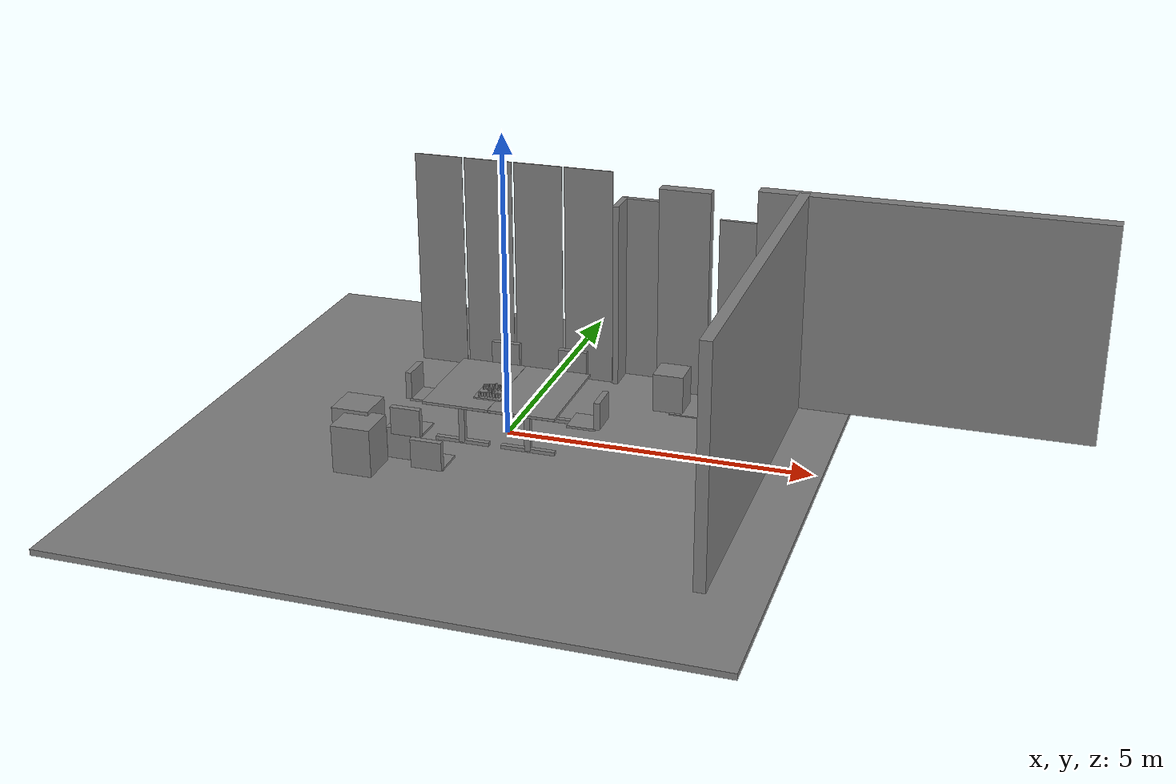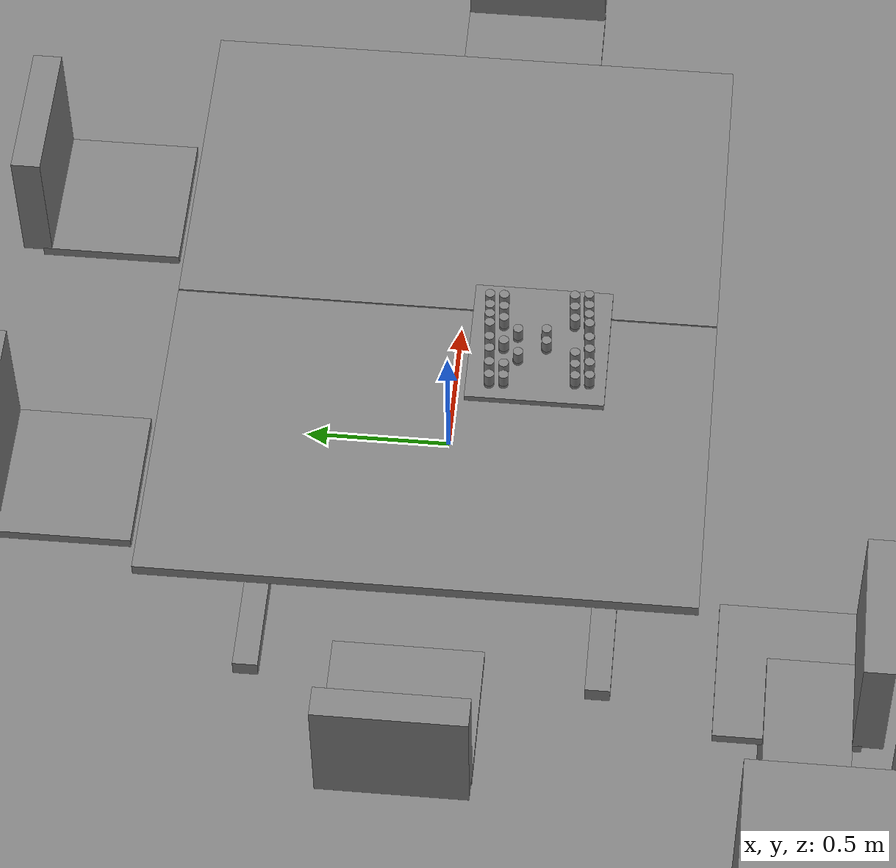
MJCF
<mujoco>
  <worldbody>
    <body pos="-0.03584015 -0.1478937 0.8536305" quat="-1 0 0 0" gravcomp="0" name="Chess_Black_knight_07_MuJoCo_body_0">
      <freejoint name="Chess_Black_knight_07_free_joint_1" />
      <geom mass="0.027" type="cylinder" size="0.01669136 0.006" pos="0 0 -0.02708054" quat="-1 0 0 0" priority="0" contype="1" conaffinity="1" group="0" condim="4" solmix="1" solref="0.01 1" solimp="0.9 0.95 0.001" margin="0.0001" gap="0" friction="0.65 0.003 0.0001" fluidshape="none" fluidcoef="5 0.25 1.5 1 1" name="Chess_Black_knight_07_base_contact_2" />
      <geom mass="0.008" type="cylinder" size="0.01669136 0.02708052" pos="0 0 0.005999982" quat="-1 0 0 0" priority="0" contype="1" conaffinity="1" group="0" condim="4" solmix="1" solref="0.01 1" solimp="0.9 0.95 0.001" margin="0.0001" gap="0" friction="0.65 0.003 0.0001" fluidshape="none" fluidcoef="5 0.25 1.5 1 1" name="Chess_Black_knight_07_upper_contact_3" />
    </body>
    <body pos="-0.2152627 -0.2552574 0.84905" quat="-1 0 0 0" gravcomp="0" name="Chess_Black_pawn_03_MuJoCo_body_4">
      <freejoint name="Chess_Black_pawn_03_free_joint_5" />
      <geom mass="0.027" type="cylinder" size="0.01645362 0.006" pos="0 0 -0.02250004" quat="-1 0 0 0" priority="0" contype="1" conaffinity="1" group="0" condim="4" solmix="1" solref="0.01 1" solimp="0.9 0.95 0.001" margin="0.0001" gap="0" friction="0.65 0.003 0.0001" fluidshape="none" fluidcoef="5 0.25 1.5 1 1" name="Chess_Black_pawn_03_base_contact_6" />
      <geom mass="0.008" type="cylinder" size="0.01645362 0.02250002" pos="0 0 0.005999982" quat="-1 0 0 0" priority="0" contype="1" conaffinity="1" group="0" condim="4" solmix="1" solref="0.01 1" solimp="0.9 0.95 0.001" margin="0.0001" gap="0" friction="0.65 0.003 0.0001" fluidshape="none" fluidcoef="5 0.25 1.5 1 1" name="Chess_Black_pawn_03_upper_contact_7" />
    </body>
    <geom density="0" type="box" size="0.2465 0.237 0.01800001" pos="-0.5599999 1.208 0.464" quat="-1 0 0 0" priority="0" contype="1" conaffinity="1" group="0" condim="4" solmix="1" solref="0.01 1" solimp="0.9 0.95 0.001" margin="0.0001" gap="0" friction="0.65 0.003 0.0001" fluidshape="none" fluidcoef="5 0.25 1.5 1 1" name="chair_02_Far left chair | slim upholstered seat_contact_8" />
    <body pos="-0.1219259 -0.248244 0.84905" quat="-1 0 0 0" gravcomp="0" name="Chess_Black_pawn_05_MuJoCo_body_9">
      <freejoint name="Chess_Black_pawn_05_free_joint_10" />
      <geom mass="0.027" type="cylinder" size="0.01645362 0.006" pos="0 0 -0.02250004" quat="-1 0 0 0" priority="0" contype="1" conaffinity="1" group="0" condim="4" solmix="1" solref="0.01 1" solimp="0.9 0.95 0.001" margin="0.0001" gap="0" friction="0.65 0.003 0.0001" fluidshape="none" fluidcoef="5 0.25 1.5 1 1" name="Chess_Black_pawn_05_base_contact_11" />
      <geom mass="0.008" type="cylinder" size="0.01645362 0.02250002" pos="0 0 0.005999982" quat="-1 0 0 0" priority="0" contype="1" conaffinity="1" group="0" condim="4" solmix="1" solref="0.01 1" solimp="0.9 0.95 0.001" margin="0.0001" gap="0" friction="0.65 0.003 0.0001" fluidshape="none" fluidcoef="5 0.25 1.5 1 1" name="Chess_Black_pawn_05_upper_contact_12" />
    </body>
    <geom density="0" type="box" size="0.425 0.007999934 1.89" pos="-2.075 2.4 1.9" quat="-1 0 0 0" priority="0" contype="1" conaffinity="1" group="0" condim="4" solmix="1" solref="0.01 1" solimp="0.9 0.95 0.001" margin="0.0001" gap="0" friction="0.65 0.003 0.0001" fluidshape="none" fluidcoef="5 0.25 1.5 1 1" name="window_0_contact_13" />
    <body pos="-0.1510608 -0.4850929 0.86005" quat="-1 0 0 0" gravcomp="0" name="Chess_White_queen_04_MuJoCo_body_14">
      <freejoint name="Chess_White_queen_04_free_joint_15" />
      <geom mass="0.027" type="cylinder" size="0.01645362 0.006" pos="0 0 -0.03349996" quat="-1 0 0 0" priority="0" contype="1" conaffinity="1" group="0" condim="4" solmix="1" solref="0.01 1" solimp="0.9 0.95 0.001" margin="0.0001" gap="0" friction="0.65 0.003 0.0001" fluidshape="none" fluidcoef="5 0.25 1.5 1 1" name="Chess_White_queen_04_base_contact_16" />
      <geom mass="0.008" type="cylinder" size="0.01645362 0.03349997" pos="0 0 0.006000042" quat="-1 0 0 0" priority="0" contype="1" conaffinity="1" group="0" condim="4" solmix="1" solref="0.01 1" solimp="0.9 0.95 0.001" margin="0.0001" gap="0" friction="0.65 0.003 0.0001" fluidshape="none" fluidcoef="5 0.25 1.5 1 1" name="Chess_White_queen_04_upper_contact_17" />
    </body>
    <geom density="0" type="box" size="0.245 0.04928007 0.2271683" pos="-1.13 -1.464 0.701" quat="-1 0 0 0" priority="0" contype="1" conaffinity="1" group="0" condim="4" solmix="1" solref="0.01 1" solimp="0.9 0.95 0.001" margin="0.0001" gap="0" friction="0.65 0.003 0.0001" fluidshape="none" fluidcoef="5 0.25 1.5 1 1" name="chair_05_Empty near desk chair | upholstered back_contact_18" />
    <geom density="0" type="box" size="0.04999997 0.2750001 1.6" pos="1.08 2.64 1.6" quat="-1 0 0 0" priority="0" contype="1" conaffinity="1" group="0" condim="4" solmix="1" solref="0.01 1" solimp="0.9 0.95 0.001" margin="0.0001" gap="0" friction="0.65 0.003 0.0001" fluidshape="none" fluidcoef="5 0.25 1.5 1 1" name="recess_left_contact_19" />
    <geom density="0" type="box" size="0.355 0.03 1.52" pos="3.13 2.71 1.52" quat="-1 0 0 0" priority="0" contype="1" conaffinity="1" group="0" condim="4" solmix="1" solref="0.01 1" solimp="0.9 0.95 0.001" margin="0.0001" gap="0" friction="0.65 0.003 0.0001" fluidshape="none" fluidcoef="5 0.25 1.5 1 1" name="walnut_door_contact_20" />
    <body pos="-0.01081772 -0.4745727 0.8536305" quat="-1 0 0 0" gravcomp="0" name="Chess_White_knight_07_MuJoCo_body_21">
      <freejoint name="Chess_White_knight_07_free_joint_22" />
      <geom mass="0.027" type="cylinder" size="0.01669137 0.006" pos="0 0 -0.02708054" quat="-1 0 0 0" priority="0" contype="1" conaffinity="1" group="0" condim="4" solmix="1" solref="0.01 1" solimp="0.9 0.95 0.001" margin="0.0001" gap="0" friction="0.65 0.003 0.0001" fluidshape="none" fluidcoef="5 0.25 1.5 1 1" name="Chess_White_knight_07_base_contact_23" />
      <geom mass="0.008" type="cylinder" size="0.01669137 0.02708052" pos="0 0 0.005999982" quat="-1 0 0 0" priority="0" contype="1" conaffinity="1" group="0" condim="4" solmix="1" solref="0.01 1" solimp="0.9 0.95 0.001" margin="0.0001" gap="0" friction="0.65 0.003 0.0001" fluidshape="none" fluidcoef="5 0.25 1.5 1 1" name="Chess_White_knight_07_upper_contact_24" />
    </body>
    <geom density="0" type="box" size="0.09000044 3.2 1.85" pos="4.2 -0.7000004 1.85" quat="-1 0 0 0" priority="0" contype="1" conaffinity="1" group="0" condim="4" solmix="1" solref="0.01 1" solimp="0.9 0.95 0.001" margin="0.0001" gap="0" friction="0.65 0.003 0.0001" fluidshape="none" fluidcoef="5 0.25 1.5 1 1" name="right_side_wall_contact_25" />
    <geom density="0" type="box" size="0.258 0.258 0.328" pos="2.26 1.74 0.342" quat="-1 0 0 0" priority="0" contype="1" conaffinity="1" group="0" condim="4" solmix="1" solref="0.01 1" solimp="0.9 0.95 0.001" margin="0.0001" gap="0" friction="0.65 0.003 0.0001" fluidshape="none" fluidcoef="5 0.25 1.5 1 1" name="plant_planter_01_contact_26" />
    <geom density="0" type="box" size="0.425 0.007999934 1.89" pos="-1.185 2.4 1.9" quat="-1 0 0 0" priority="0" contype="1" conaffinity="1" group="0" condim="4" solmix="1" solref="0.01 1" solimp="0.9 0.95 0.001" margin="0.0001" gap="0" friction="0.65 0.003 0.0001" fluidshape="none" fluidcoef="5 0.25 1.5 1 1" name="window_1_contact_27" />
    <body pos="0.03210627 -0.4243976 0.84905" quat="-1 0 0 0" gravcomp="0" name="Chess_White_pawn_08_MuJoCo_body_28">
      <freejoint name="Chess_White_pawn_08_free_joint_29" />
      <geom mass="0.027" type="cylinder" size="0.01645362 0.006" pos="0 0 -0.02250004" quat="-1 0 0 0" priority="0" contype="1" conaffinity="1" group="0" condim="4" solmix="1" solref="0.01 1" solimp="0.9 0.95 0.001" margin="0.0001" gap="0" friction="0.65 0.003 0.0001" fluidshape="none" fluidcoef="5 0.25 1.5 1 1" name="Chess_White_pawn_08_base_contact_30" />
      <geom mass="0.008" type="cylinder" size="0.01645362 0.02250002" pos="0 0 0.005999982" quat="-1 0 0 0" priority="0" contype="1" conaffinity="1" group="0" condim="4" solmix="1" solref="0.01 1" solimp="0.9 0.95 0.001" margin="0.0001" gap="0" friction="0.65 0.003 0.0001" fluidshape="none" fluidcoef="5 0.25 1.5 1 1" name="Chess_White_pawn_08_upper_contact_31" />
    </body>
    <geom density="0" type="box" size="0.45 0.04250006 0.03" pos="-0.5529999 0.59 0.051" quat="-1 0 0 0" priority="0" contype="1" conaffinity="1" group="0" condim="4" solmix="1" solref="0.01 1" solimp="0.9 0.95 0.001" margin="0.0001" gap="0" friction="0.65 0.003 0.0001" fluidshape="none" fluidcoef="5 0.25 1.5 1 1" name="desk_1_Desk 1 leg 1 floor runner_contact_32" />
    <geom density="0" type="box" size="5.144251 5.26675 0.05" pos="0 -0.3675003 -0.049" quat="-1 0 0 0" priority="0" contype="1" conaffinity="1" group="0" condim="4" solmix="1" solref="0.01 1" solimp="0.9 0.95 0.001" margin="0.0001" gap="0" friction="0.65 0.003 0.0001" fluidshape="none" fluidcoef="5 0.25 1.5 1 1" name="Floor_parquet_contact_surface_33" />
    <body pos="-0.1289393 -0.1549071 0.8663" quat="-1 0 0 0" gravcomp="0" name="Chess_Black_king_05_MuJoCo_body_34">
      <freejoint name="Chess_Black_king_05_free_joint_35" />
      <geom mass="0.027" type="cylinder" size="0.01645361 0.006" pos="0 0 -0.03975004" quat="-1 0 0 0" priority="0" contype="1" conaffinity="1" group="0" condim="4" solmix="1" solref="0.01 1" solimp="0.9 0.95 0.001" margin="0.0001" gap="0" friction="0.65 0.003 0.0001" fluidshape="none" fluidcoef="5 0.25 1.5 1 1" name="Chess_Black_king_05_base_contact_36" />
      <geom mass="0.008" type="cylinder" size="0.01645361 0.03975002" pos="0 0 0.005999982" quat="-1 0 0 0" priority="0" contype="1" conaffinity="1" group="0" condim="4" solmix="1" solref="0.01 1" solimp="0.9 0.95 0.001" margin="0.0001" gap="0" friction="0.65 0.003 0.0001" fluidshape="none" fluidcoef="5 0.25 1.5 1 1" name="Chess_Black_king_05_upper_contact_37" />
    </body>
    <body pos="-0.3121063 -0.2156024 0.84905" quat="-1 0 0 0" gravcomp="0" name="Chess_Black_pawn_01_MuJoCo_body_38">
      <freejoint name="Chess_Black_pawn_01_free_joint_39" />
      <geom mass="0.027" type="cylinder" size="0.01645362 0.006" pos="0 0 -0.02250004" quat="-1 0 0 0" priority="0" contype="1" conaffinity="1" group="0" condim="4" solmix="1" solref="0.01 1" solimp="0.9 0.95 0.001" margin="0.0001" gap="0" friction="0.65 0.003 0.0001" fluidshape="none" fluidcoef="5 0.25 1.5 1 1" name="Chess_Black_pawn_01_base_contact_40" />
      <geom mass="0.008" type="cylinder" size="0.01645362 0.02250002" pos="0 0 0.005999982" quat="-1 0 0 0" priority="0" contype="1" conaffinity="1" group="0" condim="4" solmix="1" solref="0.01 1" solimp="0.9 0.95 0.001" margin="0.0001" gap="0" friction="0.65 0.003 0.0001" fluidshape="none" fluidcoef="5 0.25 1.5 1 1" name="Chess_Black_pawn_01_upper_contact_41" />
    </body>
    <body pos="-0.06123061 -0.431411 0.84905" quat="-1 0 0 0" gravcomp="0" name="Chess_White_pawn_06_MuJoCo_body_42">
      <freejoint name="Chess_White_pawn_06_free_joint_43" />
      <geom mass="0.027" type="cylinder" size="0.01645362 0.006" pos="0 0 -0.02250004" quat="-1 0 0 0" priority="0" contype="1" conaffinity="1" group="0" condim="4" solmix="1" solref="0.01 1" solimp="0.9 0.95 0.001" margin="0.0001" gap="0" friction="0.65 0.003 0.0001" fluidshape="none" fluidcoef="5 0.25 1.5 1 1" name="Chess_White_pawn_06_base_contact_44" />
      <geom mass="0.008" type="cylinder" size="0.01645362 0.02250002" pos="0 0 0.005999982" quat="-1 0 0 0" priority="0" contype="1" conaffinity="1" group="0" condim="4" solmix="1" solref="0.01 1" solimp="0.9 0.95 0.001" margin="0.0001" gap="0" friction="0.65 0.003 0.0001" fluidshape="none" fluidcoef="5 0.25 1.5 1 1" name="Chess_White_pawn_06_upper_contact_45" />
    </body>
    <geom density="0" type="box" size="0.245 0.04927995 0.2271683" pos="-0.3800001 -2.424 0.701" quat="-1 0 0 0" priority="0" contype="1" conaffinity="1" group="0" condim="4" solmix="1" solref="0.01 1" solimp="0.9 0.95 0.001" margin="0.0001" gap="0" friction="0.65 0.003 0.0001" fluidshape="none" fluidcoef="5 0.25 1.5 1 1" name="chair_06_Nearest chair with jacket | upholstered back_contact_46" />
    <geom density="0" type="box" size="0.2465 0.237 0.01800001" pos="-1.13 -1.208 0.464" quat="-1 0 0 0" priority="0" contype="1" conaffinity="1" group="0" condim="4" solmix="1" solref="0.01 1" solimp="0.9 0.95 0.001" margin="0.0001" gap="0" friction="0.65 0.003 0.0001" fluidshape="none" fluidcoef="5 0.25 1.5 1 1" name="chair_05_Empty near desk chair | slim upholstered seat_contact_47" />
    <geom density="0" type="box" size="0.5505 0.9 0.02100003" pos="-0.553 4.834479E-08 0.774" quat="-1 0 0 0" priority="0" contype="1" conaffinity="1" group="0" condim="4" solmix="1" solref="0.01 1" solimp="0.9 0.95 0.001" margin="0.0001" gap="0" friction="0.65 0.003 0.0001" fluidshape="none" fluidcoef="5 0.25 1.5 1 1" name="desk_1_tabletop_48" />
    <geom density="0" type="box" size="0.04928007 0.245 0.2271683" pos="1.634 -0.1800002 0.701" quat="-1 0 0 0" priority="0" contype="1" conaffinity="1" group="0" condim="4" solmix="1" solref="0.01 1" solimp="0.9 0.95 0.001" margin="0.0001" gap="0" friction="0.65 0.003 0.0001" fluidshape="none" fluidcoef="5 0.25 1.5 1 1" name="chair_04_East occupied position | upholstered back_contact_49" />
    <geom density="0" type="box" size="0.1961133 0.1404344 0.2608607" pos="-1.3 -1.272016 0.2673036" quat="-1 0 0 0" priority="0" contype="1" conaffinity="1" group="0" condim="4" solmix="1" solref="0.01 1" solimp="0.9 0.95 0.001" margin="0.0001" gap="0" friction="0.65 0.003 0.0001" fluidshape="none" fluidcoef="5 0.25 1.5 1 1" name="shopping_tote_01_contact_50" />
    <body pos="0.01457274 -0.1910554 0.84905" quat="-1 0 0 0" gravcomp="0" name="Chess_Black_pawn_08_MuJoCo_body_51">
      <freejoint name="Chess_Black_pawn_08_free_joint_52" />
      <geom mass="0.027" type="cylinder" size="0.01645362 0.006" pos="0 0 -0.02250004" quat="-1 0 0 0" priority="0" contype="1" conaffinity="1" group="0" condim="4" solmix="1" solref="0.01 1" solimp="0.9 0.95 0.001" margin="0.0001" gap="0" friction="0.65 0.003 0.0001" fluidshape="none" fluidcoef="5 0.25 1.5 1 1" name="Chess_Black_pawn_08_base_contact_53" />
      <geom mass="0.008" type="cylinder" size="0.01645362 0.02250002" pos="0 0 0.005999982" quat="-1 0 0 0" priority="0" contype="1" conaffinity="1" group="0" condim="4" solmix="1" solref="0.01 1" solimp="0.9 0.95 0.001" margin="0.0001" gap="0" friction="0.65 0.003 0.0001" fluidshape="none" fluidcoef="5 0.25 1.5 1 1" name="Chess_Black_pawn_08_upper_contact_54" />
    </body>
    <geom density="0" type="box" size="0.0999999 0.07500005 0.1969205" pos="2.82 2.3 0.4419205" quat="-1 0 0 0" priority="0" contype="1" conaffinity="1" group="0" condim="4" solmix="1" solref="0.01 1" solimp="0.9 0.95 0.001" margin="0.0001" gap="0" friction="0.65 0.003 0.0001" fluidshape="none" fluidcoef="5 0.25 1.5 1 1" name="alcove_black_bag_contact_55" />
    <body pos="-0.2441599 -0.4921063 0.8536305" quat="-1 0 0 0" gravcomp="0" name="Chess_White_knight_02_MuJoCo_body_56">
      <freejoint name="Chess_White_knight_02_free_joint_57" />
      <geom mass="0.027" type="cylinder" size="0.01669137 0.006" pos="0 0 -0.02708054" quat="-1 0 0 0" priority="0" contype="1" conaffinity="1" group="0" condim="4" solmix="1" solref="0.01 1" solimp="0.9 0.95 0.001" margin="0.0001" gap="0" friction="0.65 0.003 0.0001" fluidshape="none" fluidcoef="5 0.25 1.5 1 1" name="Chess_White_knight_02_base_contact_58" />
      <geom mass="0.008" type="cylinder" size="0.01669137 0.02708052" pos="0 0 0.005999982" quat="-1 0 0 0" priority="0" contype="1" conaffinity="1" group="0" condim="4" solmix="1" solref="0.01 1" solimp="0.9 0.95 0.001" margin="0.0001" gap="0" friction="0.65 0.003 0.0001" fluidshape="none" fluidcoef="5 0.25 1.5 1 1" name="Chess_White_knight_02_upper_contact_59" />
    </body>
    <geom density="0" type="box" size="0.2465 0.237 0.01800001" pos="0.6200001 1.208 0.464" quat="-1 0 0 0" priority="0" contype="1" conaffinity="1" group="0" condim="4" solmix="1" solref="0.01 1" solimp="0.9 0.95 0.001" margin="0.0001" gap="0" friction="0.65 0.003 0.0001" fluidshape="none" fluidcoef="5 0.25 1.5 1 1" name="chair_03_Far right chair | slim upholstered seat_contact_60" />
    <geom density="0" type="box" size="0.04900003 0.04600001 0.3185" pos="0.5529999 -0.59 0.361" quat="-1 0 0 0" priority="0" contype="1" conaffinity="1" group="0" condim="4" solmix="1" solref="0.01 1" solimp="0.9 0.95 0.001" margin="0.0001" gap="0" friction="0.65 0.003 0.0001" fluidshape="none" fluidcoef="5 0.25 1.5 1 1" name="desk_2_Desk 2 leg 0 outer column_contact_61" />
    <body pos="0.03561297 -0.4710661 0.8510501" quat="-1 0 0 0" gravcomp="0" name="Chess_White_rook_08_MuJoCo_body_62">
      <freejoint name="Chess_White_rook_08_free_joint_63" />
      <geom mass="0.027" type="cylinder" size="0.01645364 0.006" pos="0 0 -0.02450007" quat="-1 0 0 0" priority="0" contype="1" conaffinity="1" group="0" condim="4" solmix="1" solref="0.01 1" solimp="0.9 0.95 0.001" margin="0.0001" gap="0" friction="0.65 0.003 0.0001" fluidshape="none" fluidcoef="5 0.25 1.5 1 1" name="Chess_White_rook_08_base_contact_64" />
      <geom mass="0.008" type="cylinder" size="0.01645364 0.02450005" pos="0 0 0.005999982" quat="-1 0 0 0" priority="0" contype="1" conaffinity="1" group="0" condim="4" solmix="1" solref="0.01 1" solimp="0.9 0.95 0.001" margin="0.0001" gap="0" friction="0.65 0.003 0.0001" fluidshape="none" fluidcoef="5 0.25 1.5 1 1" name="Chess_White_rook_08_upper_contact_65" />
    </body>
    <geom density="0" type="box" size="0.04900003 0.04600001 0.3185" pos="-0.553 -0.5899999 0.361" quat="-1 0 0 0" priority="0" contype="1" conaffinity="1" group="0" condim="4" solmix="1" solref="0.01 1" solimp="0.9 0.95 0.001" margin="0.0001" gap="0" friction="0.65 0.003 0.0001" fluidshape="none" fluidcoef="5 0.25 1.5 1 1" name="desk_1_Desk 1 leg 0 outer column_contact_66" />
    <body pos="-0.2222762 -0.1619205 0.8596501" quat="-1 0 0 0" gravcomp="0" name="Chess_Black_bishop_03_MuJoCo_body_67">
      <freejoint name="Chess_Black_bishop_03_free_joint_68" />
      <geom mass="0.027" type="cylinder" size="0.01645361 0.006" pos="0 0 -0.03310007" quat="-1 0 0 0" priority="0" contype="1" conaffinity="1" group="0" condim="4" solmix="1" solref="0.01 1" solimp="0.9 0.95 0.001" margin="0.0001" gap="0" friction="0.65 0.003 0.0001" fluidshape="none" fluidcoef="5 0.25 1.5 1 1" name="Chess_Black_bishop_03_base_contact_69" />
      <geom mass="0.008" type="cylinder" size="0.01645361 0.03310005" pos="0 0 0.005999982" quat="-1 0 0 0" priority="0" contype="1" conaffinity="1" group="0" condim="4" solmix="1" solref="0.01 1" solimp="0.9 0.95 0.001" margin="0.0001" gap="0" friction="0.65 0.003 0.0001" fluidshape="none" fluidcoef="5 0.25 1.5 1 1" name="Chess_Black_bishop_03_upper_contact_70" />
    </body>
    <body pos="-0.2691823 -0.1654272 0.8536305" quat="-1 0 0 0" gravcomp="0" name="Chess_Black_knight_02_MuJoCo_body_71">
      <freejoint name="Chess_Black_knight_02_free_joint_72" />
      <geom mass="0.027" type="cylinder" size="0.01669137 0.006" pos="0 0 -0.02708054" quat="-1 0 0 0" priority="0" contype="1" conaffinity="1" group="0" condim="4" solmix="1" solref="0.01 1" solimp="0.9 0.95 0.001" margin="0.0001" gap="0" friction="0.65 0.003 0.0001" fluidshape="none" fluidcoef="5 0.25 1.5 1 1" name="Chess_Black_knight_02_base_contact_73" />
      <geom mass="0.008" type="cylinder" size="0.01669137 0.02708052" pos="0 0 0.005999982" quat="-1 0 0 0" priority="0" contype="1" conaffinity="1" group="0" condim="4" solmix="1" solref="0.01 1" solimp="0.9 0.95 0.001" margin="0.0001" gap="0" friction="0.65 0.003 0.0001" fluidshape="none" fluidcoef="5 0.25 1.5 1 1" name="Chess_Black_knight_02_upper_contact_74" />
    </body>
    <body pos="-0.2910661 -0.4956129 0.8510501" quat="-1 0 0 0" gravcomp="0" name="Chess_White_rook_01_MuJoCo_body_75">
      <freejoint name="Chess_White_rook_01_free_joint_76" />
      <geom mass="0.027" type="cylinder" size="0.01645364 0.006" pos="0 0 -0.02450007" quat="-1 0 0 0" priority="0" contype="1" conaffinity="1" group="0" condim="4" solmix="1" solref="0.01 1" solimp="0.9 0.95 0.001" margin="0.0001" gap="0" friction="0.65 0.003 0.0001" fluidshape="none" fluidcoef="5 0.25 1.5 1 1" name="Chess_White_rook_01_base_contact_77" />
      <geom mass="0.008" type="cylinder" size="0.01645364 0.02450005" pos="0 0 0.005999982" quat="-1 0 0 0" priority="0" contype="1" conaffinity="1" group="0" condim="4" solmix="1" solref="0.01 1" solimp="0.9 0.95 0.001" margin="0.0001" gap="0" friction="0.65 0.003 0.0001" fluidshape="none" fluidcoef="5 0.25 1.5 1 1" name="Chess_White_rook_01_upper_contact_78" />
    </body>
    <geom density="0" type="box" size="0.4349999 0.1099999 1.8" pos="2.27 2.42 1.8" quat="-1 0 0 0" priority="0" contype="1" conaffinity="1" group="0" condim="4" solmix="1" solref="0.01 1" solimp="0.9 0.95 0.001" margin="0.0001" gap="0" friction="0.65 0.003 0.0001" fluidshape="none" fluidcoef="5 0.25 1.5 1 1" name="white_pier_contact_79" />
    <geom density="0" type="box" size="0.2370001 0.2465001 0.01800001" pos="-1.368 0.02000012 0.464" quat="-1 0 0 0" priority="0" contype="1" conaffinity="1" group="0" condim="4" solmix="1" solref="0.01 1" solimp="0.9 0.95 0.001" margin="0.0001" gap="0" friction="0.65 0.003 0.0001" fluidshape="none" fluidcoef="5 0.25 1.5 1 1" name="chair_01_West occupied position | slim upholstered seat_contact_80" />
    <geom density="0" type="box" size="0.04900003 0.04600001 0.3185" pos="-0.5529999 0.59 0.361" quat="-1 0 0 0" priority="0" contype="1" conaffinity="1" group="0" condim="4" solmix="1" solref="0.01 1" solimp="0.9 0.95 0.001" margin="0.0001" gap="0" friction="0.65 0.003 0.0001" fluidshape="none" fluidcoef="5 0.25 1.5 1 1" name="desk_1_Desk 1 leg 1 outer column_contact_81" />
    <body pos="-0.1615809 -0.3450876 0.84905" quat="-1 0 0 0" gravcomp="0" name="Chess_White_pawn_04_MuJoCo_body_82">
      <freejoint name="Chess_White_pawn_04_free_joint_83" />
      <geom mass="0.027" type="cylinder" size="0.01645362 0.006" pos="0 0 -0.02250004" quat="-1 0 0 0" priority="0" contype="1" conaffinity="1" group="0" condim="4" solmix="1" solref="0.01 1" solimp="0.9 0.95 0.001" margin="0.0001" gap="0" friction="0.65 0.003 0.0001" fluidshape="none" fluidcoef="5 0.25 1.5 1 1" name="Chess_White_pawn_04_base_contact_84" />
      <geom mass="0.008" type="cylinder" size="0.01645362 0.02250002" pos="0 0 0.005999982" quat="-1 0 0 0" priority="0" contype="1" conaffinity="1" group="0" condim="4" solmix="1" solref="0.01 1" solimp="0.9 0.95 0.001" margin="0.0001" gap="0" friction="0.65 0.003 0.0001" fluidshape="none" fluidcoef="5 0.25 1.5 1 1" name="Chess_White_pawn_04_upper_contact_85" />
    </body>
    <geom density="0" type="box" size="0.405 0.04999999 1.6" pos="1.46 2.89 1.6" quat="-1 0 0 0" priority="0" contype="1" conaffinity="1" group="0" condim="4" solmix="1" solref="0.01 1" solimp="0.9 0.95 0.001" margin="0.0001" gap="0" friction="0.65 0.003 0.0001" fluidshape="none" fluidcoef="5 0.25 1.5 1 1" name="recess_back_contact_86" />
    <geom density="0" type="box" size="0.245 0.04927995 0.2271683" pos="-0.5599999 1.464 0.701" quat="-1 0 0 0" priority="0" contype="1" conaffinity="1" group="0" condim="4" solmix="1" solref="0.01 1" solimp="0.9 0.95 0.001" margin="0.0001" gap="0" friction="0.65 0.003 0.0001" fluidshape="none" fluidcoef="5 0.25 1.5 1 1" name="chair_02_Far left chair | upholstered back_contact_87" />
    <body pos="-0.2654379 -0.2120956 0.84905" quat="-1 0 0 0" gravcomp="0" name="Chess_Black_pawn_02_MuJoCo_body_88">
      <freejoint name="Chess_Black_pawn_02_free_joint_89" />
      <geom mass="0.027" type="cylinder" size="0.01645362 0.006" pos="0 0 -0.02250004" quat="-1 0 0 0" priority="0" contype="1" conaffinity="1" group="0" condim="4" solmix="1" solref="0.01 1" solimp="0.9 0.95 0.001" margin="0.0001" gap="0" friction="0.65 0.003 0.0001" fluidshape="none" fluidcoef="5 0.25 1.5 1 1" name="Chess_Black_pawn_02_base_contact_90" />
      <geom mass="0.008" type="cylinder" size="0.01645362 0.02250002" pos="0 0 0.005999982" quat="-1 0 0 0" priority="0" contype="1" conaffinity="1" group="0" condim="4" solmix="1" solref="0.01 1" solimp="0.9 0.95 0.001" margin="0.0001" gap="0" friction="0.65 0.003 0.0001" fluidshape="none" fluidcoef="5 0.25 1.5 1 1" name="Chess_Black_pawn_02_upper_contact_91" />
    </body>
    <body pos="-0.1977292 -0.4885996 0.8596501" quat="-1 0 0 0" gravcomp="0" name="Chess_White_bishop_03_MuJoCo_body_92">
      <freejoint name="Chess_White_bishop_03_free_joint_93" />
      <geom mass="0.027" type="cylinder" size="0.01645362 0.006" pos="0 0 -0.03310007" quat="-1 0 0 0" priority="0" contype="1" conaffinity="1" group="0" condim="4" solmix="1" solref="0.01 1" solimp="0.9 0.95 0.001" margin="0.0001" gap="0" friction="0.65 0.003 0.0001" fluidshape="none" fluidcoef="5 0.25 1.5 1 1" name="Chess_White_bishop_03_base_contact_94" />
      <geom mass="0.008" type="cylinder" size="0.01645362 0.03310005" pos="0 0 0.005999982" quat="-1 0 0 0" priority="0" contype="1" conaffinity="1" group="0" condim="4" solmix="1" solref="0.01 1" solimp="0.9 0.95 0.001" margin="0.0001" gap="0" friction="0.65 0.003 0.0001" fluidshape="none" fluidcoef="5 0.25 1.5 1 1" name="Chess_White_bishop_03_upper_contact_95" />
    </body>
    <geom density="0" type="box" size="2.815 0.1200001 1.85" pos="6.285 2.47 1.85" quat="-1 0 0 0" priority="0" contype="1" conaffinity="1" group="0" condim="4" solmix="1" solref="0.01 1" solimp="0.9 0.95 0.001" margin="0.0001" gap="0" friction="0.65 0.003 0.0001" fluidshape="none" fluidcoef="5 0.25 1.5 1 1" name="right_wall_contact_96" />
    <body pos="-0.2012359 -0.4419311 0.84905" quat="-1 0 0 0" gravcomp="0" name="Chess_White_pawn_03_MuJoCo_body_97">
      <freejoint name="Chess_White_pawn_03_free_joint_98" />
      <geom mass="0.027" type="cylinder" size="0.01645362 0.006" pos="0 0 -0.02250004" quat="-1 0 0 0" priority="0" contype="1" conaffinity="1" group="0" condim="4" solmix="1" solref="0.01 1" solimp="0.9 0.95 0.001" margin="0.0001" gap="0" friction="0.65 0.003 0.0001" fluidshape="none" fluidcoef="5 0.25 1.5 1 1" name="Chess_White_pawn_03_base_contact_99" />
      <geom mass="0.008" type="cylinder" size="0.01645362 0.02250002" pos="0 0 0.005999982" quat="-1 0 0 0" priority="0" contype="1" conaffinity="1" group="0" condim="4" solmix="1" solref="0.01 1" solimp="0.9 0.95 0.001" margin="0.0001" gap="0" friction="0.65 0.003 0.0001" fluidshape="none" fluidcoef="5 0.25 1.5 1 1" name="Chess_White_pawn_03_upper_contact_100" />
    </body>
    <geom density="0" type="box" size="0.04900003 0.04600001 0.3185" pos="0.553 0.5899999 0.361" quat="-1 0 0 0" priority="0" contype="1" conaffinity="1" group="0" condim="4" solmix="1" solref="0.01 1" solimp="0.9 0.95 0.001" margin="0.0001" gap="0" friction="0.65 0.003 0.0001" fluidshape="none" fluidcoef="5 0.25 1.5 1 1" name="desk_2_Desk 2 leg 1 outer column_contact_101" />
    <body pos="-0.0577239 -0.4780795 0.8596501" quat="-1 0 0 0" gravcomp="0" name="Chess_White_bishop_06_MuJoCo_body_102">
      <freejoint name="Chess_White_bishop_06_free_joint_103" />
      <geom mass="0.027" type="cylinder" size="0.01645362 0.006" pos="0 0 -0.03310007" quat="-1 0 0 0" priority="0" contype="1" conaffinity="1" group="0" condim="4" solmix="1" solref="0.01 1" solimp="0.9 0.95 0.001" margin="0.0001" gap="0" friction="0.65 0.003 0.0001" fluidshape="none" fluidcoef="5 0.25 1.5 1 1" name="Chess_White_bishop_06_base_contact_104" />
      <geom mass="0.008" type="cylinder" size="0.01645362 0.03310005" pos="0 0 0.005999982" quat="-1 0 0 0" priority="0" contype="1" conaffinity="1" group="0" condim="4" solmix="1" solref="0.01 1" solimp="0.9 0.95 0.001" margin="0.0001" gap="0" friction="0.65 0.003 0.0001" fluidshape="none" fluidcoef="5 0.25 1.5 1 1" name="Chess_White_bishop_06_upper_contact_105" />
    </body>
    <body pos="-0.1149125 -0.3415809 0.84905" quat="-1 0 0 0" gravcomp="0" name="Chess_White_pawn_05_MuJoCo_body_106">
      <freejoint name="Chess_White_pawn_05_free_joint_107" />
      <geom mass="0.027" type="cylinder" size="0.01645362 0.006" pos="0 0 -0.02250004" quat="-1 0 0 0" priority="0" contype="1" conaffinity="1" group="0" condim="4" solmix="1" solref="0.01 1" solimp="0.9 0.95 0.001" margin="0.0001" gap="0" friction="0.65 0.003 0.0001" fluidshape="none" fluidcoef="5 0.25 1.5 1 1" name="Chess_White_pawn_05_base_contact_108" />
      <geom mass="0.008" type="cylinder" size="0.01645362 0.02250002" pos="0 0 0.005999982" quat="-1 0 0 0" priority="0" contype="1" conaffinity="1" group="0" condim="4" solmix="1" solref="0.01 1" solimp="0.9 0.95 0.001" margin="0.0001" gap="0" friction="0.65 0.003 0.0001" fluidshape="none" fluidcoef="5 0.25 1.5 1 1" name="Chess_White_pawn_05_upper_contact_109" />
    </body>
    <body pos="-0.0320957 -0.1945621 0.84905" quat="-1 0 0 0" gravcomp="0" name="Chess_Black_pawn_07_MuJoCo_body_110">
      <freejoint name="Chess_Black_pawn_07_free_joint_111" />
      <geom mass="0.027" type="cylinder" size="0.01645362 0.006" pos="0 0 -0.02250004" quat="-1 0 0 0" priority="0" contype="1" conaffinity="1" group="0" condim="4" solmix="1" solref="0.01 1" solimp="0.9 0.95 0.001" margin="0.0001" gap="0" friction="0.65 0.003 0.0001" fluidshape="none" fluidcoef="5 0.25 1.5 1 1" name="Chess_Black_pawn_07_base_contact_112" />
      <geom mass="0.008" type="cylinder" size="0.01645362 0.02250002" pos="0 0 0.005999982" quat="-1 0 0 0" priority="0" contype="1" conaffinity="1" group="0" condim="4" solmix="1" solref="0.01 1" solimp="0.9 0.95 0.001" margin="0.0001" gap="0" friction="0.65 0.003 0.0001" fluidshape="none" fluidcoef="5 0.25 1.5 1 1" name="Chess_Black_pawn_07_upper_contact_113" />
    </body>
    <geom density="0" type="box" size="0.675 0.6100001 0.014" pos="2.97 2.04 0.006" quat="-1 0 0 0" priority="0" contype="1" conaffinity="1" group="0" condim="4" solmix="1" solref="0.01 1" solimp="0.9 0.95 0.001" margin="0.0001" gap="0" friction="0.65 0.003 0.0001" fluidshape="none" fluidcoef="5 0.25 1.5 1 1" name="alcove_floor_contact_114" />
    <geom density="0" type="box" size="0.245 0.04927995 0.2271683" pos="0.6200001 1.464 0.701" quat="-1 0 0 0" priority="0" contype="1" conaffinity="1" group="0" condim="4" solmix="1" solref="0.01 1" solimp="0.9 0.95 0.001" margin="0.0001" gap="0" friction="0.65 0.003 0.0001" fluidshape="none" fluidcoef="5 0.25 1.5 1 1" name="chair_03_Far right chair | upholstered back_contact_115" />
    <body pos="-0.01456217 -0.4279043 0.84905" quat="-1 0 0 0" gravcomp="0" name="Chess_White_pawn_07_MuJoCo_body_116">
      <freejoint name="Chess_White_pawn_07_free_joint_117" />
      <geom mass="0.027" type="cylinder" size="0.01645362 0.006" pos="0 0 -0.02250004" quat="-1 0 0 0" priority="0" contype="1" conaffinity="1" group="0" condim="4" solmix="1" solref="0.01 1" solimp="0.9 0.95 0.001" margin="0.0001" gap="0" friction="0.65 0.003 0.0001" fluidshape="none" fluidcoef="5 0.25 1.5 1 1" name="Chess_White_pawn_07_base_contact_118" />
      <geom mass="0.008" type="cylinder" size="0.01645362 0.02250002" pos="0 0 0.005999982" quat="-1 0 0 0" priority="0" contype="1" conaffinity="1" group="0" condim="4" solmix="1" solref="0.01 1" solimp="0.9 0.95 0.001" margin="0.0001" gap="0" friction="0.65 0.003 0.0001" fluidshape="none" fluidcoef="5 0.25 1.5 1 1" name="Chess_White_pawn_07_upper_contact_119" />
    </body>
    <body pos="-0.172101 -0.2050823 0.84905" quat="-1 0 0 0" gravcomp="0" name="Chess_Black_pawn_04_MuJoCo_body_120">
      <freejoint name="Chess_Black_pawn_04_free_joint_121" />
      <geom mass="0.027" type="cylinder" size="0.01645361 0.006" pos="0 0 -0.02250004" quat="-1 0 0 0" priority="0" contype="1" conaffinity="1" group="0" condim="4" solmix="1" solref="0.01 1" solimp="0.9 0.95 0.001" margin="0.0001" gap="0" friction="0.65 0.003 0.0001" fluidshape="none" fluidcoef="5 0.25 1.5 1 1" name="Chess_Black_pawn_04_base_contact_122" />
      <geom mass="0.008" type="cylinder" size="0.01645361 0.02250002" pos="0 0 0.005999982" quat="-1 0 0 0" priority="0" contype="1" conaffinity="1" group="0" condim="4" solmix="1" solref="0.01 1" solimp="0.9 0.95 0.001" margin="0.0001" gap="0" friction="0.65 0.003 0.0001" fluidshape="none" fluidcoef="5 0.25 1.5 1 1" name="Chess_Black_pawn_04_upper_contact_123" />
    </body>
    <geom density="0" type="box" size="0.425 0.007999934 1.89" pos="-0.2949998 2.4 1.9" quat="-1 0 0 0" priority="0" contype="1" conaffinity="1" group="0" condim="4" solmix="1" solref="0.01 1" solimp="0.9 0.95 0.001" margin="0.0001" gap="0" friction="0.65 0.003 0.0001" fluidshape="none" fluidcoef="5 0.25 1.5 1 1" name="window_2_contact_124" />
    <geom density="0" type="box" size="0.04928007 0.245 0.2271683" pos="-1.624 0.02000015 0.701" quat="-1 0 0 0" priority="0" contype="1" conaffinity="1" group="0" condim="4" solmix="1" solref="0.01 1" solimp="0.9 0.95 0.001" margin="0.0001" gap="0" friction="0.65 0.003 0.0001" fluidshape="none" fluidcoef="5 0.25 1.5 1 1" name="chair_01_West occupied position | upholstered back_contact_125" />
    <geom density="0" type="box" size="0.45 0.04250006 0.03" pos="0.553 0.5899999 0.051" quat="-1 0 0 0" priority="0" contype="1" conaffinity="1" group="0" condim="4" solmix="1" solref="0.01 1" solimp="0.9 0.95 0.001" margin="0.0001" gap="0" friction="0.65 0.003 0.0001" fluidshape="none" fluidcoef="5 0.25 1.5 1 1" name="desk_2_Desk 2 leg 1 floor runner_contact_126" />
    <geom density="0" type="box" size="0.2465 0.237 0.01800001" pos="-0.3800001 -2.168 0.464" quat="-1 0 0 0" priority="0" contype="1" conaffinity="1" group="0" condim="4" solmix="1" solref="0.01 1" solimp="0.9 0.95 0.001" margin="0.0001" gap="0" friction="0.65 0.003 0.0001" fluidshape="none" fluidcoef="5 0.25 1.5 1 1" name="chair_06_Nearest chair with jacket | slim upholstered seat_contact_127" />
    <geom density="0" type="box" size="0.3193215 0.3169425 0.3930702" pos="-1.755199 -1.859977 0.4130701" quat="-1 0 0 0" priority="0" contype="1" conaffinity="1" group="0" condim="4" solmix="1" solref="0.01 1" solimp="0.9 0.95 0.001" margin="0.0001" gap="0" friction="0.65 0.003 0.0001" fluidshape="none" fluidcoef="5 0.25 1.5 1 1" name="backpack_02_contact_128" />
    <geom density="0" type="box" size="0.2292086 0.2292086 0.01152503" pos="-0.14 -0.32 0.808525" quat="-1 0 0 0" priority="0" contype="1" conaffinity="1" group="0" condim="4" solmix="1" solref="0.01 1" solimp="0.9 0.95 0.001" margin="0.0001" gap="0" friction="0.65 0.003 0.0001" fluidshape="none" fluidcoef="5 0.25 1.5 1 1" name="Chessboard_01_contact_129" />
    <body pos="0.01106603 -0.144387 0.8510501" quat="-1 0 0 0" gravcomp="0" name="Chess_Black_rook_08_MuJoCo_body_130">
      <freejoint name="Chess_Black_rook_08_free_joint_131" />
      <geom mass="0.027" type="cylinder" size="0.01645362 0.006" pos="0 0 -0.02450007" quat="-1 0 0 0" priority="0" contype="1" conaffinity="1" group="0" condim="4" solmix="1" solref="0.01 1" solimp="0.9 0.95 0.001" margin="0.0001" gap="0" friction="0.65 0.003 0.0001" fluidshape="none" fluidcoef="5 0.25 1.5 1 1" name="Chess_Black_rook_08_base_contact_132" />
      <geom mass="0.008" type="cylinder" size="0.01645362 0.02450005" pos="0 0 0.005999982" quat="-1 0 0 0" priority="0" contype="1" conaffinity="1" group="0" condim="4" solmix="1" solref="0.01 1" solimp="0.9 0.95 0.001" margin="0.0001" gap="0" friction="0.65 0.003 0.0001" fluidshape="none" fluidcoef="5 0.25 1.5 1 1" name="Chess_Black_rook_08_upper_contact_133" />
    </body>
    <body pos="-0.08227085 -0.1514004 0.8596501" quat="-1 0 0 0" gravcomp="0" name="Chess_Black_bishop_06_MuJoCo_body_134">
      <freejoint name="Chess_Black_bishop_06_free_joint_135" />
      <geom mass="0.027" type="cylinder" size="0.01645362 0.006" pos="0 0 -0.03310007" quat="-1 0 0 0" priority="0" contype="1" conaffinity="1" group="0" condim="4" solmix="1" solref="0.01 1" solimp="0.9 0.95 0.001" margin="0.0001" gap="0" friction="0.65 0.003 0.0001" fluidshape="none" fluidcoef="5 0.25 1.5 1 1" name="Chess_Black_bishop_06_base_contact_136" />
      <geom mass="0.008" type="cylinder" size="0.01645362 0.03310005" pos="0 0 0.005999982" quat="-1 0 0 0" priority="0" contype="1" conaffinity="1" group="0" condim="4" solmix="1" solref="0.01 1" solimp="0.9 0.95 0.001" margin="0.0001" gap="0" friction="0.65 0.003 0.0001" fluidshape="none" fluidcoef="5 0.25 1.5 1 1" name="Chess_Black_bishop_06_upper_contact_137" />
    </body>
    <geom density="0" type="box" size="0.425 0.007999934 1.89" pos="0.5950003 2.4 1.9" quat="-1 0 0 0" priority="0" contype="1" conaffinity="1" group="0" condim="4" solmix="1" solref="0.01 1" solimp="0.9 0.95 0.001" margin="0.0001" gap="0" friction="0.65 0.003 0.0001" fluidshape="none" fluidcoef="5 0.25 1.5 1 1" name="window_3_contact_138" />
    <body pos="-0.1756077 -0.1584138 0.86005" quat="-1 0 0 0" gravcomp="0" name="Chess_Black_queen_04_MuJoCo_body_139">
      <freejoint name="Chess_Black_queen_04_free_joint_140" />
      <geom mass="0.027" type="cylinder" size="0.01645361 0.006" pos="0 0 -0.03349996" quat="-1 0 0 0" priority="0" contype="1" conaffinity="1" group="0" condim="4" solmix="1" solref="0.01 1" solimp="0.9 0.95 0.001" margin="0.0001" gap="0" friction="0.65 0.003 0.0001" fluidshape="none" fluidcoef="5 0.25 1.5 1 1" name="Chess_Black_queen_04_base_contact_141" />
      <geom mass="0.008" type="cylinder" size="0.01645361 0.03349997" pos="0 0 0.006000042" quat="-1 0 0 0" priority="0" contype="1" conaffinity="1" group="0" condim="4" solmix="1" solref="0.01 1" solimp="0.9 0.95 0.001" margin="0.0001" gap="0" friction="0.65 0.003 0.0001" fluidshape="none" fluidcoef="5 0.25 1.5 1 1" name="Chess_Black_queen_04_upper_contact_142" />
    </body>
    <body pos="-0.315613 -0.1689339 0.8510501" quat="-1 0 0 0" gravcomp="0" name="Chess_Black_rook_01_MuJoCo_body_143">
      <freejoint name="Chess_Black_rook_01_free_joint_144" />
      <geom mass="0.027" type="cylinder" size="0.01645364 0.006" pos="0 0 -0.02450007" quat="-1 0 0 0" priority="0" contype="1" conaffinity="1" group="0" condim="4" solmix="1" solref="0.01 1" solimp="0.9 0.95 0.001" margin="0.0001" gap="0" friction="0.65 0.003 0.0001" fluidshape="none" fluidcoef="5 0.25 1.5 1 1" name="Chess_Black_rook_01_base_contact_145" />
      <geom mass="0.008" type="cylinder" size="0.01645364 0.02450005" pos="0 0 0.005999982" quat="-1 0 0 0" priority="0" contype="1" conaffinity="1" group="0" condim="4" solmix="1" solref="0.01 1" solimp="0.9 0.95 0.001" margin="0.0001" gap="0" friction="0.65 0.003 0.0001" fluidshape="none" fluidcoef="5 0.25 1.5 1 1" name="Chess_Black_rook_01_upper_contact_146" />
    </body>
    <body pos="-0.2945728 -0.4489445 0.84905" quat="-1 0 0 0" gravcomp="0" name="Chess_White_pawn_01_MuJoCo_body_147">
      <freejoint name="Chess_White_pawn_01_free_joint_148" />
      <geom mass="0.027" type="cylinder" size="0.01645362 0.006" pos="0 0 -0.02250004" quat="-1 0 0 0" priority="0" contype="1" conaffinity="1" group="0" condim="4" solmix="1" solref="0.01 1" solimp="0.9 0.95 0.001" margin="0.0001" gap="0" friction="0.65 0.003 0.0001" fluidshape="none" fluidcoef="5 0.25 1.5 1 1" name="Chess_White_pawn_01_base_contact_149" />
      <geom mass="0.008" type="cylinder" size="0.01645362 0.02250002" pos="0 0 0.005999982" quat="-1 0 0 0" priority="0" contype="1" conaffinity="1" group="0" condim="4" solmix="1" solref="0.01 1" solimp="0.9 0.95 0.001" margin="0.0001" gap="0" friction="0.65 0.003 0.0001" fluidshape="none" fluidcoef="5 0.25 1.5 1 1" name="Chess_White_pawn_01_upper_contact_150" />
    </body>
    <geom density="0" type="box" size="0.45 0.04250006 0.03" pos="-0.553 -0.5899999 0.051" quat="-1 0 0 0" priority="0" contype="1" conaffinity="1" group="0" condim="4" solmix="1" solref="0.01 1" solimp="0.9 0.95 0.001" margin="0.0001" gap="0" friction="0.65 0.003 0.0001" fluidshape="none" fluidcoef="5 0.25 1.5 1 1" name="desk_1_Desk 1 leg 0 floor runner_contact_151" />
    <geom density="0" type="box" size="0.308512 0.3062758 0.4224723" pos="-1.983835 -1.371787 0.4424723" quat="-1 0 0 0" priority="0" contype="1" conaffinity="1" group="0" condim="4" solmix="1" solref="0.01 1" solimp="0.9 0.95 0.001" margin="0.0001" gap="0" friction="0.65 0.003 0.0001" fluidshape="none" fluidcoef="5 0.25 1.5 1 1" name="backpack_01_contact_152" />
    <body pos="-0.07876413 -0.1980688 0.84905" quat="-1 0 0 0" gravcomp="0" name="Chess_Black_pawn_06_MuJoCo_body_153">
      <freejoint name="Chess_Black_pawn_06_free_joint_154" />
      <geom mass="0.027" type="cylinder" size="0.01645362 0.006" pos="0 0 -0.02250004" quat="-1 0 0 0" priority="0" contype="1" conaffinity="1" group="0" condim="4" solmix="1" solref="0.01 1" solimp="0.9 0.95 0.001" margin="0.0001" gap="0" friction="0.65 0.003 0.0001" fluidshape="none" fluidcoef="5 0.25 1.5 1 1" name="Chess_Black_pawn_06_base_contact_155" />
      <geom mass="0.008" type="cylinder" size="0.01645362 0.02250002" pos="0 0 0.005999982" quat="-1 0 0 0" priority="0" contype="1" conaffinity="1" group="0" condim="4" solmix="1" solref="0.01 1" solimp="0.9 0.95 0.001" margin="0.0001" gap="0" friction="0.65 0.003 0.0001" fluidshape="none" fluidcoef="5 0.25 1.5 1 1" name="Chess_Black_pawn_06_upper_contact_156" />
    </body>
    <geom density="0" type="box" size="0.5505 0.9 0.02100003" pos="0.553 -4.834479E-08 0.774" quat="-1 0 0 0" priority="0" contype="1" conaffinity="1" group="0" condim="4" solmix="1" solref="0.01 1" solimp="0.9 0.95 0.001" margin="0.0001" gap="0" friction="0.65 0.003 0.0001" fluidshape="none" fluidcoef="5 0.25 1.5 1 1" name="desk_2_tabletop_157" />
    <body pos="-0.1043923 -0.4815862 0.8663" quat="-1 0 0 0" gravcomp="0" name="Chess_White_king_05_MuJoCo_body_158">
      <freejoint name="Chess_White_king_05_free_joint_159" />
      <geom mass="0.027" type="cylinder" size="0.01645362 0.006" pos="0 0 -0.03975004" quat="-1 0 0 0" priority="0" contype="1" conaffinity="1" group="0" condim="4" solmix="1" solref="0.01 1" solimp="0.9 0.95 0.001" margin="0.0001" gap="0" friction="0.65 0.003 0.0001" fluidshape="none" fluidcoef="5 0.25 1.5 1 1" name="Chess_White_king_05_base_contact_160" />
      <geom mass="0.008" type="cylinder" size="0.01645362 0.03975002" pos="0 0 0.005999982" quat="-1 0 0 0" priority="0" contype="1" conaffinity="1" group="0" condim="4" solmix="1" solref="0.01 1" solimp="0.9 0.95 0.001" margin="0.0001" gap="0" friction="0.65 0.003 0.0001" fluidshape="none" fluidcoef="5 0.25 1.5 1 1" name="Chess_White_king_05_upper_contact_161" />
    </body>
    <body pos="-0.2479044 -0.4454378 0.84905" quat="-1 0 0 0" gravcomp="0" name="Chess_White_pawn_02_MuJoCo_body_162">
      <freejoint name="Chess_White_pawn_02_free_joint_163" />
      <geom mass="0.027" type="cylinder" size="0.01645362 0.006" pos="0 0 -0.02250004" quat="-1 0 0 0" priority="0" contype="1" conaffinity="1" group="0" condim="4" solmix="1" solref="0.01 1" solimp="0.9 0.95 0.001" margin="0.0001" gap="0" friction="0.65 0.003 0.0001" fluidshape="none" fluidcoef="5 0.25 1.5 1 1" name="Chess_White_pawn_02_base_contact_164" />
      <geom mass="0.008" type="cylinder" size="0.01645362 0.02250002" pos="0 0 0.005999982" quat="-1 0 0 0" priority="0" contype="1" conaffinity="1" group="0" condim="4" solmix="1" solref="0.01 1" solimp="0.9 0.95 0.001" margin="0.0001" gap="0" friction="0.65 0.003 0.0001" fluidshape="none" fluidcoef="5 0.25 1.5 1 1" name="Chess_White_pawn_02_upper_contact_165" />
    </body>
    <geom density="0" type="box" size="0.45 0.04250006 0.03" pos="0.5529999 -0.59 0.051" quat="-1 0 0 0" priority="0" contype="1" conaffinity="1" group="0" condim="4" solmix="1" solref="0.01 1" solimp="0.9 0.95 0.001" margin="0.0001" gap="0" friction="0.65 0.003 0.0001" fluidshape="none" fluidcoef="5 0.25 1.5 1 1" name="desk_2_Desk 2 leg 0 floor runner_contact_166" />
    <geom density="0" type="box" size="0.237 0.2465001 0.01800001" pos="1.378 -0.1800001 0.464" quat="-1 0 0 0" priority="0" contype="1" conaffinity="1" group="0" condim="4" solmix="1" solref="0.01 1" solimp="0.9 0.95 0.001" margin="0.0001" gap="0" friction="0.65 0.003 0.0001" fluidshape="none" fluidcoef="5 0.25 1.5 1 1" name="chair_04_East occupied position | slim upholstered seat_contact_167" />
  </worldbody>
  <contact />
  <tendon />
  <equality />
  <actuator />
  <sensor />
  <compiler coordinate="local" />
  <option gravity="0 0 -9.81" timestep="0.002" />
  <option impratio="1" magnetic="0 0 0" wind="0 0 0" density="0" viscosity="0" o_margin="0" o_solref="0.02 1" o_solimp="0.9 0.95 0.001 0.5 2" integrator="implicitfast" cone="elliptic" jacobian="auto" solver="Newton" iterations="100" tolerance="1E-08" noslip_iterations="0" noslip_tolerance="1E-06" ccd_iterations="50" ccd_tolerance="1E-06">
    <flag constraint="enable" equality="enable" frictionloss="enable" limit="enable" contact="enable" spring="enable" damper="enable" gravity="enable" clampctrl="enable" warmstart="enable" filterparent="enable" actuation="enable" refsafe="enable" override="disable" energy="disable" fwdinv="disable" multiccd="disable" />
  </option>
  <size memory="64M" />
  <custom />
  <asset />
</mujoco>
